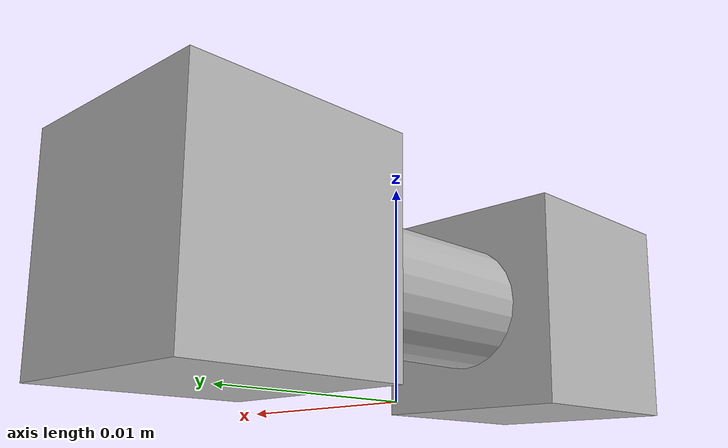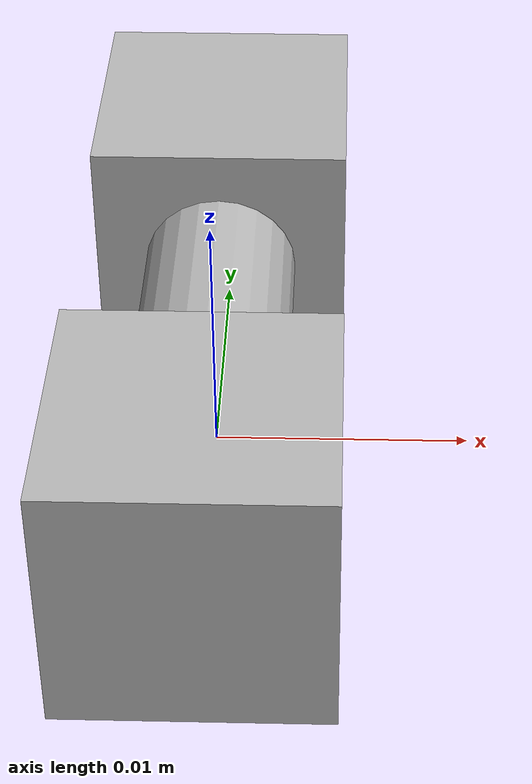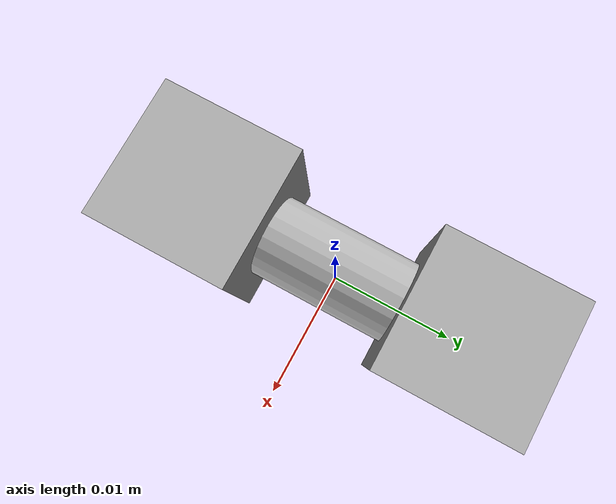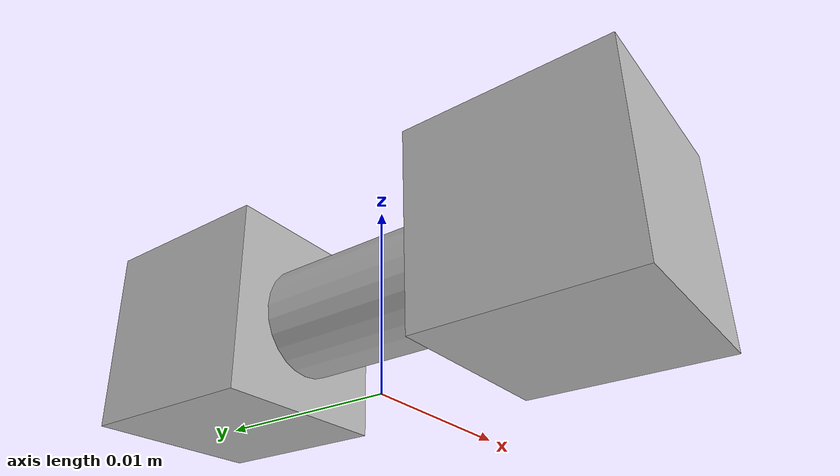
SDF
<?xml version="1.0"?>

<!--

  Meet the Gossips.

  The communication system for a MiM. Allows MiMs
  to communicate P2P or Broadcast. Uses WiFi and
  therefore intensity can be used to estimate
  distances for localization.

-->

<sdf version="1.6">
  <model name="gossip">

    <!--
      The Producer
      ------------
    -->

    <link name="speaker">

      <pose>0 -0.01 0.005 0 0 0</pose>
      <inertial>
        <mass>0.01</mass>
        <inertia>
          <ixx>0.00000017</ixx>
          <iyy>0.00000017</iyy>
          <izz>0.00000017</izz>
          <ixy>0</ixy>
          <iyz>0</iyz>
          <ixz>0</ixz>
        </inertia>
      </inertial>

      <collision name="speaker_col">
        <geometry>
          <box><size>0.01 0.01 0.01</size></box>
        </geometry>
      </collision>

      <visual name="speaker_vis">
        <geometry>
          <box><size>0.01 0.01 0.01</size></box>
        </geometry>
      </visual>

      <!--
        Wireless Transmitter
      -->
      <sensor name="wtrans_sensor" type="wireless_transmitter">
        <always_on>1</always_on>
        <update_rate>1</update_rate>
        <visualize>true</visualize>
        <transceiver>
          <essid>osrf</essid>
          <frequency>2442.0</frequency>
          <power>14.5</power>
          <gain>2.6</gain>
        </transceiver>
        <plugin name="wtrans_plugin" filename="speaker.so"></plugin>
      </sensor>

    </link>

    <!--
      The Listener
      ------------
    -->

    <link name="listener">

      <pose>0 0.01 0.005 0 0 0</pose>
      <inertial>
        <mass>0.01</mass>
        <inertia>
          <ixx>0.00000017</ixx>
          <iyy>0.00000017</iyy>
          <izz>0.00000017</izz>
          <ixy>0</ixy>
          <iyz>0</iyz>
          <ixz>0</ixz>
        </inertia>
      </inertial>

      <collision name="listener_col">
        <geometry>
          <box><size>0.01 0.01 0.01</size></box>
        </geometry>
      </collision>

      <visual name="listener_vis">
        <geometry>
          <box><size>0.01 0.01 0.01</size></box>
        </geometry>
      </visual>

      <!--
        Wireless Receiver
      -->
      <sensor name="wrecv_sensor" type="wireless_receiver">
        <always_on>1</always_on>
        <update_rate>1</update_rate>
        <visualize>true</visualize>
        <transceiver>
          <min_frequency>2412.0</min_frequency>
          <max_frequency>2484.0</max_frequency>
          <power>14.5</power>
          <gain>2.5</gain>
          <sensitivity>-90.0</sensitivity>
        </transceiver>
        <plugin name="wrecv_plugin" filename="listener.so"></plugin>
      </sensor>

    </link>

    <!--
      The Medium
      ----------
    -->

    <link name="medium">

      <pose>0 0 0.005 1.5708 0 0</pose>
      <inertial>
        <mass>0.01</mass>
        <inertia>
          <ixx>0.00000036</ixx>
          <iyy>0.00000036</iyy>
          <izz>0.00000004</izz>
          <ixy>0</ixy>
          <iyz>0</iyz>
          <ixz>0</ixz>
        </inertia>
      </inertial>

      <collision name="medium_col">
        <geometry>
          <cylinder>
            <radius>0.003</radius>
            <length>0.02</length>
          </cylinder>
        </geometry>
      </collision>

      <visual name="medium_vis">
        <geometry>
          <cylinder>
            <radius>0.003</radius>
            <length>0.02</length>
          </cylinder>
        </geometry>
      </visual>

    </link>

    <joint name="medium_left_joint" type="fixed">
      <pose>0 -0.01 0.005</pose>
      <parent>speaker</parent>
      <child>medium</child>
    </joint>

    <joint name="medium_right_joint" type="fixed">
      <pose>0 0.01 0.005</pose>
      <parent>listener</parent>
      <child>medium</child>
    </joint>

  </model>
</sdf>
